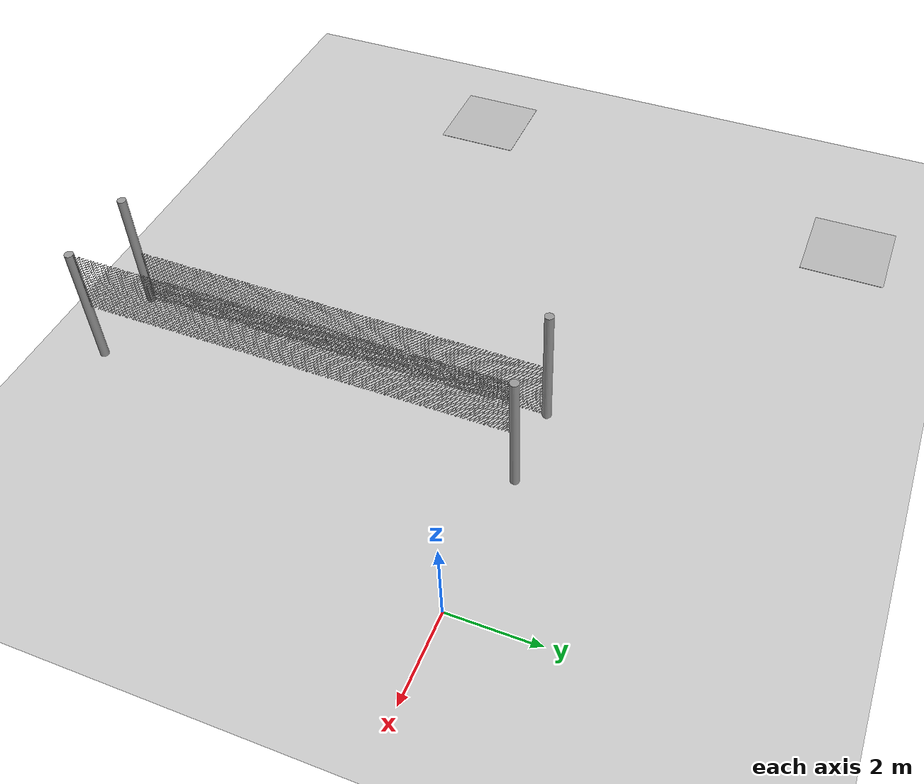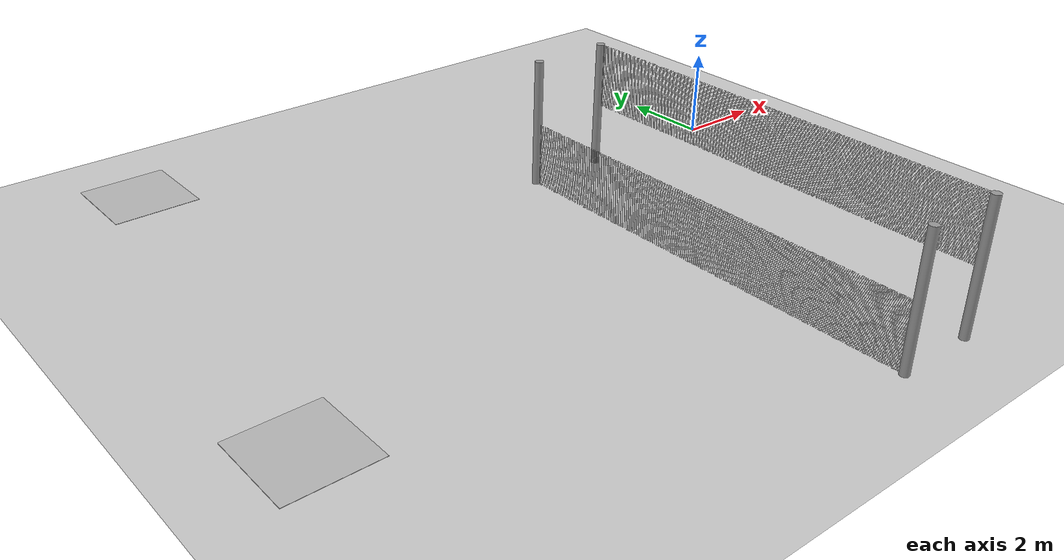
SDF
<sdf version="1.6">
 <world name="default">
  <model name="ground_plane">
   <static>1</static>
   <link name="link">
    <collision name="collision">
     <geometry><plane><normal>0 0 1</normal><size>100 100</size></plane></geometry>
     <surface><friction><ode><mu>100</mu><mu2>50</mu2></ode></friction></surface>
    </collision>
    <visual name="visual">
     <cast_shadows>0</cast_shadows>
     <geometry><plane><normal>0 0 1</normal><size>100 100</size></plane></geometry>
     <material>
      <script><uri>file://media/materials/scripts/gazebo.material</uri><name>Gazebo/Grey</name></script>
     </material>
    </visual>
   </link>
  </model>
  <model name="start_0">
   <static>1</static>
   <pose>-12.7927 6.76191 0 0 -0 0</pose>
   <link name="box">
    <pose>0 -1.5 0 0 -0 0</pose>
    <collision name="collision"><geometry><box><size>2 2 0.01</size></box></geometry></collision>
    <visual name="visual">
     <geometry><box><size>2 2 0.01</size></box></geometry>
     <material>
      <script>
       <uri>model://start/materials/scripts</uri>
       <uri>model://start/materials/textures</uri>
       <name>TexturedShape/Start</name>
      </script>
     </material>
    </visual>
   </link>
  </model>
  <model name="Net_Top">
   <static>1</static>
   <link name="link_1">
    <inertial>
     <mass>1</mass>
     <inertia>
      <ixx>0.166667</ixx>
      <ixy>0</ixy>
      <ixz>0</ixz>
      <iyy>0.166667</iyy>
      <iyz>0</iyz>
      <izz>0.166667</izz>
     </inertia>
    </inertial>
    <visual name="visual">
     <geometry><mesh><uri>model://Net_Top/materials/net_top.dae</uri><scale>1 1 1</scale></mesh></geometry>
     <material>
      <lighting>1</lighting>
      <script><uri>file://media/materials/scripts/gazebo.material</uri><name>Gazebo/Grey</name></script>
      <ambient>0.3 0.3 0.3 1</ambient>
      <diffuse>0.7 0.7 0.7 1</diffuse>
      <specular>0.01 0.01 0.01 1</specular>
      <emissive>0 0 0 1</emissive>
     </material>
    </visual>
    <collision name="collision">
     <geometry><mesh><uri>model://Net_Top/materials/net_top.dae</uri><scale>1 1 1</scale></mesh></geometry>
     <surface>
      <friction>
       <ode><mu>1</mu><mu2>1</mu2><fdir1>0 0 0</fdir1><slip1>0</slip1><slip2>0</slip2></ode>
       <torsional>
        <coefficient>1</coefficient>
        <patch_radius>0</patch_radius>
        <surface_radius>0</surface_radius>
        <use_patch_radius>1</use_patch_radius>
        <ode><slip>0</slip></ode>
       </torsional>
      </friction>
      <bounce><restitution_coefficient>0</restitution_coefficient><threshold>1e+06</threshold></bounce>
      <contact>
       <collide_without_contact>0</collide_without_contact>
       <collide_without_contact_bitmask>1</collide_without_contact_bitmask>
       <collide_bitmask>1</collide_bitmask>
       <ode>
        <soft_cfm>0</soft_cfm>
        <soft_erp>0.2</soft_erp>
        <kp>1e+13</kp>
        <kd>1</kd>
        <max_vel>0.01</max_vel>
        <min_depth>0</min_depth>
       </ode>
       <bullet>
        <split_impulse>1</split_impulse>
        <split_impulse_penetration_threshold>-0.01</split_impulse_penetration_threshold>
        <soft_cfm>0</soft_cfm>
        <soft_erp>0.2</soft_erp>
        <kp>1e+13</kp>
        <kd>1</kd>
       </bullet>
      </contact>
     </surface>
    </collision>
   </link>
   <static>0</static>
   <pose>-3.31866 -4.80275 0 0 -0 0</pose>
  </model>
  <model name="Net_Down">
   <static>1</static>
   <link name="link_1">
    <inertial>
     <mass>1</mass>
     <inertia>
      <ixx>0.166667</ixx>
      <ixy>0</ixy>
      <ixz>0</ixz>
      <iyy>0.166667</iyy>
      <iyz>0</iyz>
      <izz>0.166667</izz>
     </inertia>
    </inertial>
    <visual name="visual">
     <geometry><mesh><uri>model://Net_Down/materials/net_down.dae</uri><scale>1 1 1</scale></mesh></geometry>
     <material>
      <lighting>1</lighting>
      <script><uri>file://media/materials/scripts/gazebo.material</uri><name>Gazebo/Grey</name></script>
      <ambient>0.3 0.3 0.3 1</ambient>
      <diffuse>0.7 0.7 0.7 1</diffuse>
      <specular>0.01 0.01 0.01 1</specular>
      <emissive>0 0 0 1</emissive>
     </material>
    </visual>
    <collision name="collision">
     <geometry><mesh><uri>model://Net_Down/materials/net_down.dae</uri><scale>1 1 1</scale></mesh></geometry>
     <surface>
      <friction>
       <ode><mu>1</mu><mu2>1</mu2><fdir1>0 0 0</fdir1><slip1>0</slip1><slip2>0</slip2></ode>
       <torsional>
        <coefficient>1</coefficient>
        <patch_radius>0</patch_radius>
        <surface_radius>0</surface_radius>
        <use_patch_radius>1</use_patch_radius>
        <ode><slip>0</slip></ode>
       </torsional>
      </friction>
      <bounce><restitution_coefficient>0</restitution_coefficient><threshold>1e+06</threshold></bounce>
      <contact>
       <collide_without_contact>0</collide_without_contact>
       <collide_without_contact_bitmask>1</collide_without_contact_bitmask>
       <collide_bitmask>1</collide_bitmask>
       <ode>
        <soft_cfm>0</soft_cfm>
        <soft_erp>0.2</soft_erp>
        <kp>1e+13</kp>
        <kd>1</kd>
        <max_vel>0.01</max_vel>
        <min_depth>0</min_depth>
       </ode>
       <bullet>
        <split_impulse>1</split_impulse>
        <split_impulse_penetration_threshold>-0.01</split_impulse_penetration_threshold>
        <soft_cfm>0</soft_cfm>
        <soft_erp>0.2</soft_erp>
        <kp>1e+13</kp>
        <kd>1</kd>
       </bullet>
      </contact>
     </surface>
    </collision>
   </link>
   <static>0</static>
   <pose>-5.19773 -4.79799 0 0 -0 0</pose>
  </model>
  <model name="end_0">
   <static>1</static>
   <pose>-14.5903 -3.45211 0 0 -0 0</pose>
   <link name="box">
    <pose>0 -1.5 0 0 -0 0</pose>
    <collision name="collision"><geometry><box><size>2 2 0.01</size></box></geometry></collision>
    <visual name="visual">
     <geometry><box><size>2 2 0.01</size></box></geometry>
     <material>
      <script>
       <uri>model://end/materials/scripts</uri>
       <uri>model://end/materials/textures</uri>
       <name>TexturedShape/End</name>
      </script>
     </material>
    </visual>
   </link>
  </model>
 </world>
</sdf>
